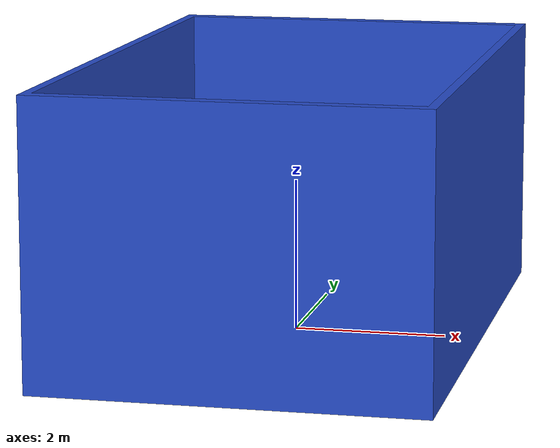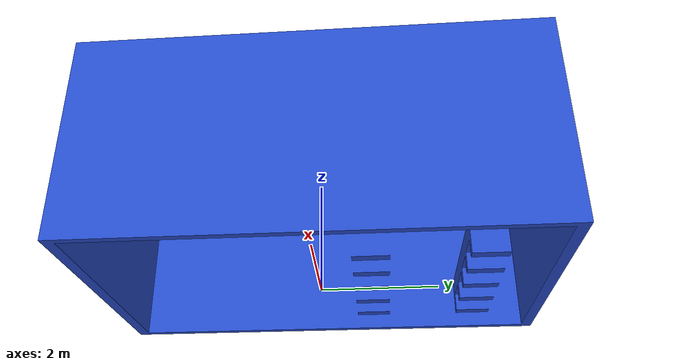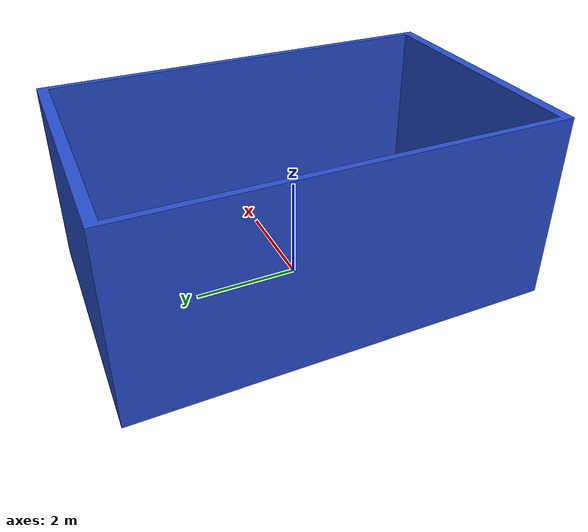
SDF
<?xml version='1.0'?>
<sdf version='1.7'>
    <model name='warehouse'>
        <link name='link_0'>

            <collision name='one'>
                <pose>0 0 0 0 0 0</pose>
                    <geometry>
                        <mesh>
                            <uri>model://warehouse/meshes/warehouse.dae</uri>
                            <scale>1 1 1</scale>
                        </mesh>
                    </geometry>
                <max_contacts>10</max_contacts>
                <surface>
                    <bounce/>
                    <friction>
                        <ode/>
                    </friction>
                    <contact>
                        <ode/>
                    </contact>
                </surface>
            </collision>

            <visual name='one'>
                <pose>0 0 0 0 0 0</pose>
                <geometry>
                    <mesh>
                        <uri>model://warehouse/meshes/warehouse.dae</uri>
                        <scale>1 1 1</scale>
                    </mesh>
                </geometry>
                <material>
                    <script>
                        <uri>file://media/materials/scripts/gazebo.material</uri>
                        <name>Gazebo/Blue</name>
                    </script>
                </material>
            </visual>
        </link>

    </model>
</sdf>
